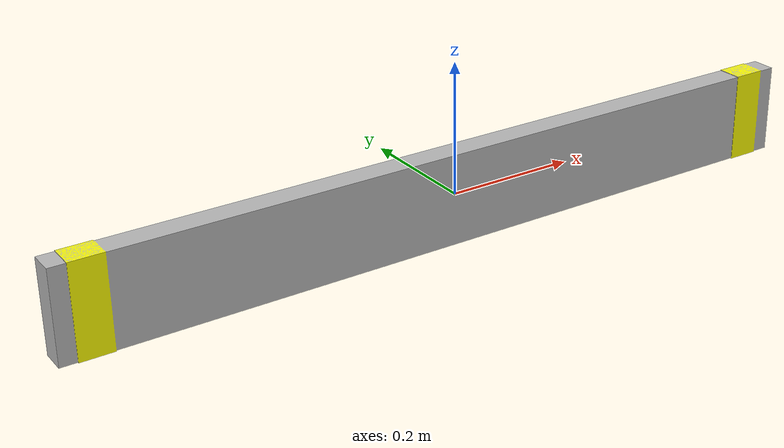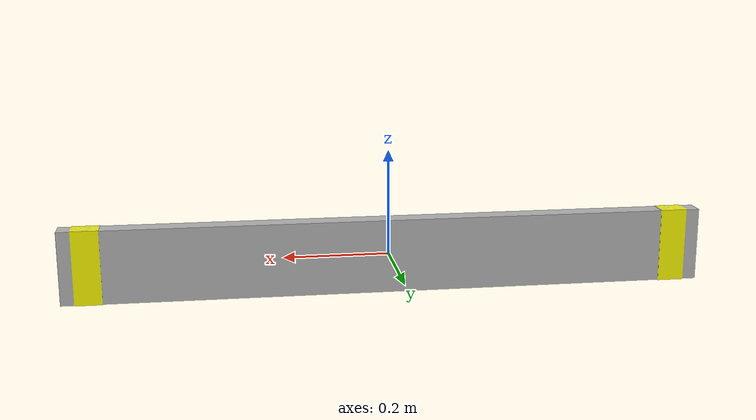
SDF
<?xml version="1.0" ?>
<sdf version="1.5">
  <model name="lumber_2x6x48">
    <link name="link">
      <self_collide>false</self_collide>
      <inertial>
        <mass>2.22</mass>
        <inertia>
          <ixx>0.0039</ixx>
          <ixy>0.00</ixy>
          <ixz>0.00</ixz>
          <iyy>0.28</iyy>
          <iyz>0.00</iyz>
          <izz>0.2766</izz>
        </inertia>
      </inertial>
      <collision name="collision">
        <geometry>
          <box>
            <size>1.2192 0.038 0.1396</size>
          </box>
        </geometry>
        <surface>
          <bounce>
            <restitution_coefficient>0.01</restitution_coefficient>
            <threshold>5.0</threshold>
          </bounce>
          <friction>
            <ode>
              <mu>5</mu>
              <mu2>5</mu2>
            </ode>
          </friction>
          <contact>
            <ode>
              <soft_cfm>0.01</soft_cfm>
              <!--"sponginess", 0.0=hard-->
              <kp>10000.0</kp>
              <kd>1000.0</kd>
              <min_depth>0.001</min_depth>
            </ode>
          </contact>
        </surface>
      </collision>
      <visual name="visual">
        <geometry>
          <mesh>
            <uri>model://drc_practice_2x6/meshes/2x6x48.dae</uri>
          </mesh>
        </geometry>
      </visual>
    </link>
  </model>
</sdf>
